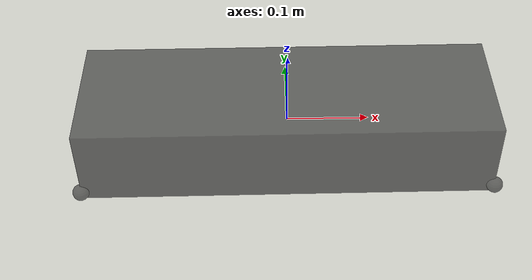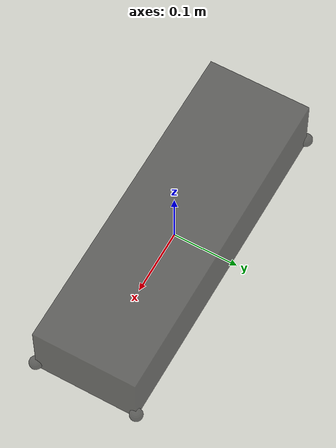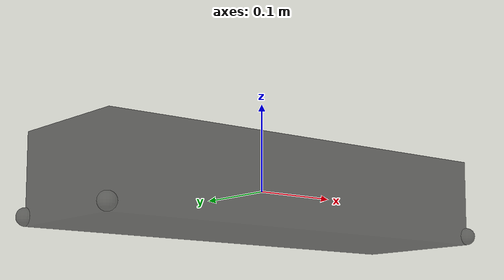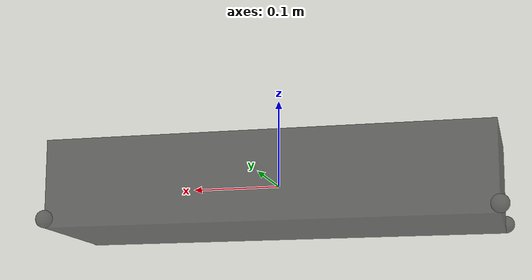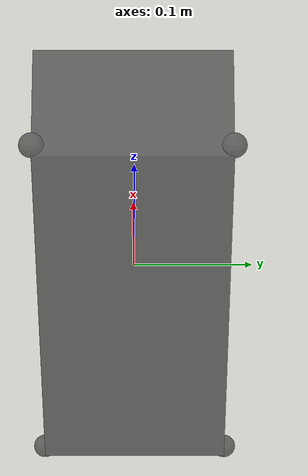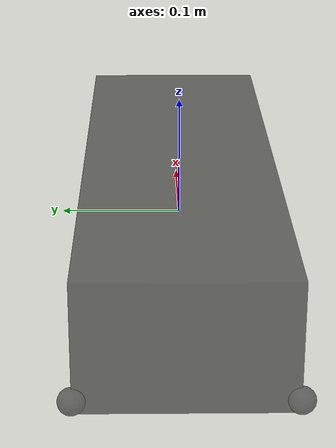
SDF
<?xml version="1.0"?>
<sdf version="1.7">
  <model name="block">
    <link name="block">
      <inertial>
        <pose>0 0 0 0 0 0</pose>
        <mass>.5</mass>
        <!-- Inertia values were calculated to be consistent with the mass and
             geometry size, assuming a uniform density. -->
        <inertia>
          <ixx>0.001483</ixx>
          <ixy>0</ixy>
          <ixz>0</ixz>
          <iyy>0.0108333</iyy>
          <iyz>0</iyz>
          <izz>0.011483</izz>
        </inertia>
      </inertial>
      <visual name="block">
        <pose>0 0 0.0 0 0 0</pose>
        <geometry>
          <box>
            <size>0.5 0.16 0.1</size>
          </box>
        </geometry>
        <material>
          <diffuse>0.1 0.1 0.1 0.6</diffuse>
        </material>
      </visual>
      <collision name="block">
        <pose>0 0 0.0 0 0 0</pose>
        <geometry>
          <box>
            <size>0.5 0.16 0.1</size>
          </box>
        </geometry>
      </collision>
    </link>

    <link name="contact_sphere">
      <inertial>
        <mass>0.01</mass>
      </inertial>
      <visual name="contact_sphere">
        <pose>-0.21 0.0 0.0 0 0 0</pose>
        <geometry>
          <sphere>
            <radius>0.04</radius>
          </sphere>
        </geometry>
        <material>
          <diffuse>0.1 0.1 0.1 0.6</diffuse>
        </material>
      </visual>
      <collision name="contact_sphere">
        <pose>-0.21 0.0 0.0 0 0 0</pose>
        <geometry>
          <sphere>
            <radius>0.04</radius>
          </sphere>
        </geometry>
	<surface>
	  <friction>
	    <ode>
	      <mu>1.0</mu>
	      <mu2>1.0</mu2>
	    </ode>
	  </friction>
	</surface>
      </collision>
    </link>
    <joint name="joint_sphere" type="fixed">
      <parent>block</parent>
      <child>contact_sphere</child>
    </joint>

    <link name="point_FR">
      <inertial>
        <mass>0.01</mass>
      </inertial>
      <visual name="point_FR">
        <pose>0.25 0.08 -0.040 0 0 0</pose>
        <geometry>
          <sphere>
            <radius>0.01</radius>
          </sphere>
        </geometry>
        <material>
          <diffuse>0.1 0.1 0.1 0.6</diffuse>
        </material>
      </visual>
      <collision name="point_FR">
        <pose>0.25 0.08 -0.040 0 0 0</pose>
        <geometry>
          <sphere>
            <radius>0.01</radius>
          </sphere>
        </geometry>
	<surface>
	  <friction>
	    <ode>
	      <mu>1.0</mu>
	      <mu2>1.0</mu2>
	    </ode>
	  </friction>
	</surface>
      </collision>
    </link>
    <joint name="joint_FR" type="fixed">
      <parent>block</parent>
      <child>point_FR</child>
    </joint>

    <link name="point_FL">
      <inertial>
        <mass>0.01</mass>
      </inertial>
      <visual name="point_FL">
        <pose>-0.25 0.08 -0.040 0 0 0</pose>
        <geometry>
          <sphere>
            <radius>0.01</radius>
          </sphere>
        </geometry>
        <material>
          <diffuse>0.1 0.1 0.1 0.6</diffuse>
        </material>
      </visual>
      <collision name="point_FL">
        <pose>-0.25 0.08 -0.040 0 0 0</pose>
        <geometry>
          <sphere>
            <radius>0.01</radius>
          </sphere>
        </geometry>
	<surface>
	  <friction>
	    <ode>
	      <mu>1.0</mu>
	      <mu2>1.0</mu2>
	    </ode>
	  </friction>
	</surface>
      </collision>
    </link>
    <joint name="joint_FL" type="fixed">
      <parent>block</parent>
      <child>point_FL</child>
    </joint>

    <link name="point_BR">
      <inertial>
        <mass>0.01</mass>
      </inertial>
      <visual name="point_BR">
        <pose>0.25 -0.08 -0.040 0 0 0</pose>
        <geometry>
          <sphere>
            <radius>0.01</radius>
          </sphere>
        </geometry>
        <material>
          <diffuse>0.1 0.1 0.1 0.6</diffuse>
        </material>
      </visual>
      <collision name="point_BR">
        <pose>0.25 -0.08 -0.040 0 0 0</pose>
        <geometry>
          <sphere>
            <radius>0.01</radius>
          </sphere>
        </geometry>
	<surface>
	  <friction>
	    <ode>
	      <mu>1.0</mu>
	      <mu2>1.0</mu2>
	    </ode>
	  </friction>
	</surface>
      </collision>
    </link>
    <joint name="joint_BR" type="fixed">
      <parent>block</parent>
      <child>point_BR</child>
    </joint>
    <link name="point_BL">
      <inertial>
        <mass>0.01</mass>
      </inertial>
      <visual name="point_BL">
        <pose>-0.25 -0.08 -0.040 0 0 0</pose>
        <geometry>
          <sphere>
            <radius>0.01</radius>
          </sphere>
        </geometry>
        <material>
          <diffuse>0.1 0.1 0.1 0.6</diffuse>
        </material>
      </visual>
      <collision name="point_BL">
        <pose>-0.25 -0.08 -0.040 0 0 0</pose>
        <geometry>
          <sphere>
            <radius>0.01</radius>
          </sphere>
        </geometry>
	<surface>
	  <friction>
	    <ode>
	      <mu>1.0</mu>
	      <mu2>1.0</mu2>
	    </ode>
	  </friction>
	</surface>
      </collision>
    </link>
    <joint name="joint_BL" type="fixed">
      <parent>block</parent>
      <child>point_BL</child>
    </joint>
  </model>
</sdf>
